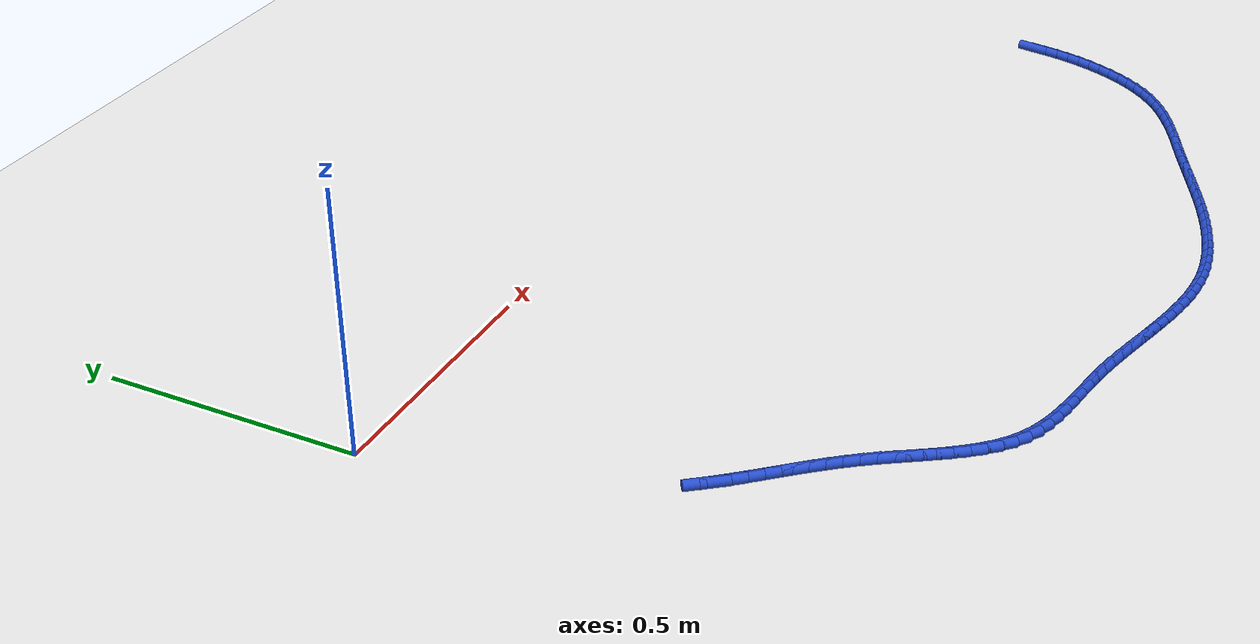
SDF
<sdf version="1.6">
 <world name="default">
  <model name="ground_plane">
   <static>1</static>
   <link name="link">
    <collision name="collision">
     <geometry><plane><normal>0 0 1</normal><size>100 100</size></plane></geometry>
     <surface><friction><ode><mu>100</mu><mu2>50</mu2></ode></friction></surface>
    </collision>
    <visual name="visual">
     <cast_shadows>0</cast_shadows>
     <geometry><plane><normal>0 0 1</normal><size>100 100</size></plane></geometry>
     <material>
      <script><uri>file://media/materials/scripts/gazebo.material</uri><name>Gazebo/WhiteGlow</name></script>
     </material>
    </visual>
   </link>
  </model>
  <model name="line">
   <link name="link_139">
    <pose>1.9559506436346756 -0.5431057378054991 0.01 0 1.57 1.4125639524216804</pose>
    <collision name="collision">
     <geometry><cylinder><radius>0.01</radius><length>0.08</length></cylinder></geometry>
    </collision>
    <visual name="visual">
     <material>
      <script><name>Gazebo/Blue</name><uri>file://media/materials/scripts/gazebo.material</uri></script>
     </material>
     <geometry><cylinder><radius>0.01</radius><length>0.08</length></cylinder></geometry>
    </visual>
   </link>
   <link name="link_140">
    <pose>1.9514938248098423 -0.5710365627338017 0.01 0 1.57 1.373774677985335</pose>
    <collision name="collision">
     <geometry><cylinder><radius>0.01</radius><length>0.08</length></cylinder></geometry>
    </collision>
    <visual name="visual">
     <material>
      <script><name>Gazebo/Blue</name><uri>file://media/materials/scripts/gazebo.material</uri></script>
     </material>
     <geometry><cylinder><radius>0.01</radius><length>0.08</length></cylinder></geometry>
    </visual>
   </link>
   <link name="link_141">
    <pose>1.9459382107487242 -0.59886874414688 0.01 0 1.57 1.3281870864576197</pose>
    <collision name="collision">
     <geometry><cylinder><radius>0.01</radius><length>0.08</length></cylinder></geometry>
    </collision>
    <visual name="visual">
     <material>
      <script><name>Gazebo/Blue</name><uri>file://media/materials/scripts/gazebo.material</uri></script>
     </material>
     <geometry><cylinder><radius>0.01</radius><length>0.08</length></cylinder></geometry>
    </visual>
   </link>
   <link name="link_142">
    <pose>1.9390818744615204 -0.6265729068750617 0.01 0 1.57 1.2779340515262887</pose>
    <collision name="collision">
     <geometry><cylinder><radius>0.01</radius><length>0.08</length></cylinder></geometry>
    </collision>
    <visual name="visual">
     <material>
      <script><name>Gazebo/Blue</name><uri>file://media/materials/scripts/gazebo.material</uri></script>
     </material>
     <geometry><cylinder><radius>0.01</radius><length>0.08</length></cylinder></geometry>
    </visual>
   </link>
   <link name="link_143">
    <pose>1.930792009245361 -0.6540653393045576 0.01 0 1.57 1.2258310094982932</pose>
    <collision name="collision">
     <geometry><cylinder><radius>0.01</radius><length>0.08</length></cylinder></geometry>
    </collision>
    <visual name="visual">
     <material>
      <script><name>Gazebo/Blue</name><uri>file://media/materials/scripts/gazebo.material</uri></script>
     </material>
     <geometry><cylinder><radius>0.01</radius><length>0.08</length></cylinder></geometry>
    </visual>
   </link>
   <link name="link_144">
    <pose>1.9210520615719568 -0.6811709415417458 0.01 0 1.57 1.1715428759661775</pose>
    <collision name="collision">
     <geometry><cylinder><radius>0.01</radius><length>0.08</length></cylinder></geometry>
    </collision>
    <visual name="visual">
     <material>
      <script><name>Gazebo/Blue</name><uri>file://media/materials/scripts/gazebo.material</uri></script>
     </material>
     <geometry><cylinder><radius>0.01</radius><length>0.08</length></cylinder></geometry>
    </visual>
   </link>
   <link name="link_145">
    <pose>1.909856625261561 -0.7077058506032109 0.01 0 1.57 1.1144315573899457</pose>
    <collision name="collision">
     <geometry><cylinder><radius>0.01</radius><length>0.08</length></cylinder></geometry>
    </collision>
    <visual name="visual">
     <material>
      <script><name>Gazebo/Blue</name><uri>file://media/materials/scripts/gazebo.material</uri></script>
     </material>
     <geometry><cylinder><radius>0.01</radius><length>0.08</length></cylinder></geometry>
    </visual>
   </link>
   <link name="link_146">
    <pose>1.8972002941344264 -0.7334862035055367 0.01 0 1.57 1.0538609094750415</pose>
    <collision name="collision">
     <geometry><cylinder><radius>0.01</radius><length>0.08</length></cylinder></geometry>
    </collision>
    <visual name="visual">
     <material>
      <script><name>Gazebo/Blue</name><uri>file://media/materials/scripts/gazebo.material</uri></script>
     </material>
     <geometry><cylinder><radius>0.01</radius><length>0.08</length></cylinder></geometry>
    </visual>
   </link>
   <link name="link_147">
    <pose>1.8830776620108047 -0.7583281372653077 0.01 0 1.57 0.9892059513643956</pose>
    <collision name="collision">
     <geometry><cylinder><radius>0.01</radius><length>0.08</length></cylinder></geometry>
    </collision>
    <visual name="visual">
     <material>
      <script><name>Gazebo/Blue</name><uri>file://media/materials/scripts/gazebo.material</uri></script>
     </material>
     <geometry><cylinder><radius>0.01</radius><length>0.08</length></cylinder></geometry>
    </visual>
   </link>
   <link name="link_148">
    <pose>1.8674833227109493 -0.7820477888991068 0.01 0 1.57 0.9198750159980641</pose>
    <collision name="collision">
     <geometry><cylinder><radius>0.01</radius><length>0.08</length></cylinder></geometry>
    </collision>
    <visual name="visual">
     <material>
      <script><name>Gazebo/Blue</name><uri>file://media/materials/scripts/gazebo.material</uri></script>
     </material>
     <geometry><cylinder><radius>0.01</radius><length>0.08</length></cylinder></geometry>
    </visual>
   </link>
   <link name="link_149">
    <pose>1.8504118700551124 -0.8044612954235184 0.01 0 1.57 0.845348479310693</pose>
    <collision name="collision">
     <geometry><cylinder><radius>0.01</radius><length>0.08</length></cylinder></geometry>
    </collision>
    <visual name="visual">
     <material>
      <script><name>Gazebo/Blue</name><uri>file://media/materials/scripts/gazebo.material</uri></script>
     </material>
     <geometry><cylinder><radius>0.01</radius><length>0.08</length></cylinder></geometry>
    </visual>
   </link>
   <link name="link_150">
    <pose>1.831857897863546 -0.8253847938551268 0.01 0 1.57 0.7653259132161297</pose>
    <collision name="collision">
     <geometry><cylinder><radius>0.01</radius><length>0.08</length></cylinder></geometry>
    </collision>
    <visual name="visual">
     <material>
      <script><name>Gazebo/Blue</name><uri>file://media/materials/scripts/gazebo.material</uri></script>
     </material>
     <geometry><cylinder><radius>0.01</radius><length>0.08</length></cylinder></geometry>
    </visual>
   </link>
   <link name="link_151">
    <pose>1.8118171298860966 -0.844636762260224 0.01 0 1.57 0.6853636844567281</pose>
    <collision name="collision">
     <geometry><cylinder><radius>0.01</radius><length>0.08</length></cylinder></geometry>
    </collision>
    <visual name="visual">
     <material>
      <script><name>Gazebo/Blue</name><uri>file://media/materials/scripts/gazebo.material</uri></script>
     </material>
     <geometry><cylinder><radius>0.01</radius><length>0.08</length></cylinder></geometry>
    </visual>
   </link>
   <link name="link_152">
    <pose>1.7903562027882622 -0.8621825999482347 0.01 0 1.57 0.6149918365311201</pose>
    <collision name="collision">
     <geometry><cylinder><radius>0.01</radius><length>0.08</length></cylinder></geometry>
    </collision>
    <visual name="visual">
     <material>
      <script><name>Gazebo/Blue</name><uri>file://media/materials/scripts/gazebo.material</uri></script>
     </material>
     <geometry><cylinder><radius>0.01</radius><length>0.08</length></cylinder></geometry>
    </visual>
   </link>
   <link name="link_153">
    <pose>1.7676534990929573 -0.8782192273856995 0.01 0 1.57 0.5554765264292743</pose>
    <collision name="collision">
     <geometry><cylinder><radius>0.01</radius><length>0.08</length></cylinder></geometry>
    </collision>
    <visual name="visual">
     <material>
      <script><name>Gazebo/Blue</name><uri>file://media/materials/scripts/gazebo.material</uri></script>
     </material>
     <geometry><cylinder><radius>0.01</radius><length>0.08</length></cylinder></geometry>
    </visual>
   </link>
   <link name="link_154">
    <pose>1.743897231083949 -0.8929639308733786 0.01 0 1.57 0.5068311858692481</pose>
    <collision name="collision">
     <geometry><cylinder><radius>0.01</radius><length>0.08</length></cylinder></geometry>
    </collision>
    <visual name="visual">
     <material>
      <script><name>Gazebo/Blue</name><uri>file://media/materials/scripts/gazebo.material</uri></script>
     </material>
     <geometry><cylinder><radius>0.01</radius><length>0.08</length></cylinder></geometry>
    </visual>
   </link>
   <link name="link_155">
    <pose>1.7192756110450027 -0.9066339967120328 0.01 0 1.57 0.46879924281256974</pose>
    <collision name="collision">
     <geometry><cylinder><radius>0.01</radius><length>0.08</length></cylinder></geometry>
    </collision>
    <visual name="visual">
     <material>
      <script><name>Gazebo/Blue</name><uri>file://media/materials/scripts/gazebo.material</uri></script>
     </material>
     <geometry><cylinder><radius>0.01</radius><length>0.08</length></cylinder></geometry>
    </visual>
   </link>
   <link name="link_156">
    <pose>1.6939768512598887 -0.9194467112024219 0.01 0 1.57 0.44102506789707036</pose>
    <collision name="collision">
     <geometry><cylinder><radius>0.01</radius><length>0.08</length></cylinder></geometry>
    </collision>
    <visual name="visual">
     <material>
      <script><name>Gazebo/Blue</name><uri>file://media/materials/scripts/gazebo.material</uri></script>
     </material>
     <geometry><cylinder><radius>0.01</radius><length>0.08</length></cylinder></geometry>
    </visual>
   </link>
   <link name="link_157">
    <pose>1.6681891640123723 -0.9316193606453067 0.01 0 1.57 0.42317549848484876</pose>
    <collision name="collision">
     <geometry><cylinder><radius>0.01</radius><length>0.08</length></cylinder></geometry>
    </collision>
    <visual name="visual">
     <material>
      <script><name>Gazebo/Blue</name><uri>file://media/materials/scripts/gazebo.material</uri></script>
     </material>
     <geometry><cylinder><radius>0.01</radius><length>0.08</length></cylinder></geometry>
    </visual>
   </link>
   <link name="link_158">
    <pose>1.6421007615862209 -0.9433692313414478 0.01 0 1.57 0.41501773414216553</pose>
    <collision name="collision">
     <geometry><cylinder><radius>0.01</radius><length>0.08</length></cylinder></geometry>
    </collision>
    <visual name="visual">
     <material>
      <script><name>Gazebo/Blue</name><uri>file://media/materials/scripts/gazebo.material</uri></script>
     </material>
     <geometry><cylinder><radius>0.01</radius><length>0.08</length></cylinder></geometry>
    </visual>
   </link>
   <link name="link_159">
    <pose>1.615899856265202 -0.9549136095916052 0.01 0 1.57 0.4164641312949849</pose>
    <collision name="collision">
     <geometry><cylinder><radius>0.01</radius><length>0.08</length></cylinder></geometry>
    </collision>
    <visual name="visual">
     <material>
      <script><name>Gazebo/Blue</name><uri>file://media/materials/scripts/gazebo.material</uri></script>
     </material>
     <geometry><cylinder><radius>0.01</radius><length>0.08</length></cylinder></geometry>
    </visual>
   </link>
   <link name="link_160">
    <pose>1.5897746603284557 -0.9664697816907993 0.01 0 1.57 0.42527121408741</pose>
    <collision name="collision">
     <geometry><cylinder><radius>0.01</radius><length>0.08</length></cylinder></geometry>
    </collision>
    <visual name="visual">
     <material>
      <script><name>Gazebo/Blue</name><uri>file://media/materials/scripts/gazebo.material</uri></script>
     </material>
     <geometry><cylinder><radius>0.01</radius><length>0.08</length></cylinder></geometry>
    </visual>
   </link>
   <link name="link_161">
    <pose>1.5638706220382113 -0.9782019786322178 0.01 0 1.57 0.43237338520078883</pose>
    <collision name="collision">
     <geometry><cylinder><radius>0.01</radius><length>0.08</length></cylinder></geometry>
    </collision>
    <visual name="visual">
     <material>
      <script><name>Gazebo/Blue</name><uri>file://media/materials/scripts/gazebo.material</uri></script>
     </material>
     <geometry><cylinder><radius>0.01</radius><length>0.08</length></cylinder></geometry>
    </visual>
   </link>
   <link name="link_162">
    <pose>1.5381645729728057 -0.990065236630259 0.01 0 1.57 0.4354653270289345</pose>
    <collision name="collision">
     <geometry><cylinder><radius>0.01</radius><length>0.08</length></cylinder></geometry>
    </collision>
    <visual name="visual">
     <material>
      <script><name>Gazebo/Blue</name><uri>file://media/materials/scripts/gazebo.material</uri></script>
     </material>
     <geometry><cylinder><radius>0.01</radius><length>0.08</length></cylinder></geometry>
    </visual>
   </link>
   <link name="link_163">
    <pose>1.5125917917135079 -1.0019630390527705 0.01 0 1.57 0.4344953187759427</pose>
    <collision name="collision">
     <geometry><cylinder><radius>0.01</radius><length>0.08</length></cylinder></geometry>
    </collision>
    <visual name="visual">
     <material>
      <script><name>Gazebo/Blue</name><uri>file://media/materials/scripts/gazebo.material</uri></script>
     </material>
     <geometry><cylinder><radius>0.01</radius><length>0.08</length></cylinder></geometry>
    </visual>
   </link>
   <link name="link_164">
    <pose>1.4870875568415822 -1.0137988692676 0.01 0 1.57 0.4294269257647403</pose>
    <collision name="collision">
     <geometry><cylinder><radius>0.01</radius><length>0.08</length></cylinder></geometry>
    </collision>
    <visual name="visual">
     <material>
      <script><name>Gazebo/Blue</name><uri>file://media/materials/scripts/gazebo.material</uri></script>
     </material>
     <geometry><cylinder><radius>0.01</radius><length>0.08</length></cylinder></geometry>
    </visual>
   </link>
   <link name="link_165">
    <pose>1.461587146938295 -1.025476210642595 0.01 0 1.57 0.42023997744326946</pose>
    <collision name="collision">
     <geometry><cylinder><radius>0.01</radius><length>0.08</length></cylinder></geometry>
    </collision>
    <visual name="visual">
     <material>
      <script><name>Gazebo/Blue</name><uri>file://media/materials/scripts/gazebo.material</uri></script>
     </material>
     <geometry><cylinder><radius>0.01</radius><length>0.08</length></cylinder></geometry>
    </visual>
   </link>
   <link name="link_166">
    <pose>1.4360258405849122 -1.0368985465456035 0.01 0 1.57 0.4069334793713736</pose>
    <collision name="collision">
     <geometry><cylinder><radius>0.01</radius><length>0.08</length></cylinder></geometry>
    </collision>
    <visual name="visual">
     <material>
      <script><name>Gazebo/Blue</name><uri>file://media/materials/scripts/gazebo.material</uri></script>
     </material>
     <geometry><cylinder><radius>0.01</radius><length>0.08</length></cylinder></geometry>
    </visual>
   </link>
   <link name="link_167">
    <pose>1.4103389163627005 -1.0479693603444735 0.01 0 1.57 0.3895304396511434</pose>
    <collision name="collision">
     <geometry><cylinder><radius>0.01</radius><length>0.08</length></cylinder></geometry>
    </collision>
    <visual name="visual">
     <material>
      <script><name>Gazebo/Blue</name><uri>file://media/materials/scripts/gazebo.material</uri></script>
     </material>
     <geometry><cylinder><radius>0.01</radius><length>0.08</length></cylinder></geometry>
    </visual>
   </link>
   <link name="link_168">
    <pose>1.3844616528529263 -1.0585921354070524 0.01 0 1.57 0.36808443249380635</pose>
    <collision name="collision">
     <geometry><cylinder><radius>0.01</radius><length>0.08</length></cylinder></geometry>
    </collision>
    <visual name="visual">
     <material>
      <script><name>Gazebo/Blue</name><uri>file://media/materials/scripts/gazebo.material</uri></script>
     </material>
     <geometry><cylinder><radius>0.01</radius><length>0.08</length></cylinder></geometry>
    </visual>
   </link>
   <link name="link_169">
    <pose>1.358329328636854 -1.0686703551011871 0.01 0 1.57 0.34268751199488484</pose>
    <collision name="collision">
     <geometry><cylinder><radius>0.01</radius><length>0.08</length></cylinder></geometry>
    </collision>
    <visual name="visual">
     <material>
      <script><name>Gazebo/Blue</name><uri>file://media/materials/scripts/gazebo.material</uri></script>
     </material>
     <geometry><cylinder><radius>0.01</radius><length>0.08</length></cylinder></geometry>
    </visual>
   </link>
   <link name="link_170">
    <pose>1.331877222295751 -1.0781075027947271 0.01 0 1.57 0.31347904345910593</pose>
    <collision name="collision">
     <geometry><cylinder><radius>0.01</radius><length>0.08</length></cylinder></geometry>
    </collision>
    <visual name="visual">
     <material>
      <script><name>Gazebo/Blue</name><uri>file://media/materials/scripts/gazebo.material</uri></script>
     </material>
     <geometry><cylinder><radius>0.01</radius><length>0.08</length></cylinder></geometry>
    </visual>
   </link>
   <link name="link_171">
    <pose>1.305040731482103 -1.0868070297183439 0.01 0 1.57 0.28068031925091164</pose>
    <collision name="collision">
     <geometry><cylinder><radius>0.01</radius><length>0.08</length></cylinder></geometry>
    </collision>
    <visual name="visual">
     <material>
      <script><name>Gazebo/Blue</name><uri>file://media/materials/scripts/gazebo.material</uri></script>
     </material>
     <geometry><cylinder><radius>0.01</radius><length>0.08</length></cylinder></geometry>
    </visual>
   </link>
   <link name="link_172">
    <pose>1.2777988278232593 -1.0946606265407557 0.01 0 1.57 0.24429952003980096</pose>
    <collision name="collision">
     <geometry><cylinder><radius>0.01</radius><length>0.08</length></cylinder></geometry>
    </collision>
    <visual name="visual">
     <material>
      <script><name>Gazebo/Blue</name><uri>file://media/materials/scripts/gazebo.material</uri></script>
     </material>
     <geometry><cylinder><radius>0.01</radius><length>0.08</length></cylinder></geometry>
    </visual>
   </link>
   <link name="link_173">
    <pose>1.2502387733223066 -1.1015307564921275 0.01 0 1.57 0.2039570069829803</pose>
    <collision name="collision">
     <geometry><cylinder><radius>0.01</radius><length>0.08</length></cylinder></geometry>
    </collision>
    <visual name="visual">
     <material>
      <script><name>Gazebo/Blue</name><uri>file://media/materials/scripts/gazebo.material</uri></script>
     </material>
     <geometry><cylinder><radius>0.01</radius><length>0.08</length></cylinder></geometry>
    </visual>
   </link>
   <link name="link_174">
    <pose>1.2224643676768507 -1.1072754192993146 0.01 0 1.57 0.15920077057156953</pose>
    <collision name="collision">
     <geometry><cylinder><radius>0.01</radius><length>0.08</length></cylinder></geometry>
    </collision>
    <visual name="visual">
     <material>
      <script><name>Gazebo/Blue</name><uri>file://media/materials/scripts/gazebo.material</uri></script>
     </material>
     <geometry><cylinder><radius>0.01</radius><length>0.08</length></cylinder></geometry>
    </visual>
   </link>
   <link name="link_175">
    <pose>1.194579410584498 -1.111752614689173 0.01 0 1.57 0.10954676432510882</pose>
    <collision name="collision">
     <geometry><cylinder><radius>0.01</radius><length>0.08</length></cylinder></geometry>
    </collision>
    <visual name="visual">
     <material>
      <script><name>Gazebo/Blue</name><uri>file://media/materials/scripts/gazebo.material</uri></script>
     </material>
     <geometry><cylinder><radius>0.01</radius><length>0.08</length></cylinder></geometry>
    </visual>
   </link>
   <link name="link_176">
    <pose>1.1666877017428554 -1.1148203423885577 0.01 0 1.57 0.05449817579247812</pose>
    <collision name="collision">
     <geometry><cylinder><radius>0.01</radius><length>0.08</length></cylinder></geometry>
    </collision>
    <visual name="visual">
     <material>
      <script><name>Gazebo/Blue</name><uri>file://media/materials/scripts/gazebo.material</uri></script>
     </material>
     <geometry><cylinder><radius>0.01</radius><length>0.08</length></cylinder></geometry>
    </visual>
   </link>
   <link name="link_177">
    <pose>1.138893040849528 -1.1163366021243242 0.01 0 1.57 -0.005367091232098269</pose>
    <collision name="collision">
     <geometry><cylinder><radius>0.01</radius><length>0.08</length></cylinder></geometry>
    </collision>
    <visual name="visual">
     <material>
      <script><name>Gazebo/Blue</name><uri>file://media/materials/scripts/gazebo.material</uri></script>
     </material>
     <geometry><cylinder><radius>0.01</radius><length>0.08</length></cylinder></geometry>
    </visual>
   </link>
   <link name="link_178">
    <pose>1.1112861236052891 -1.1161884318581201 0.01 0 1.57 -0.06269636779164692</pose>
    <collision name="collision">
     <geometry><cylinder><radius>0.01</radius><length>0.08</length></cylinder></geometry>
    </collision>
    <visual name="visual">
     <material>
      <script><name>Gazebo/Blue</name><uri>file://media/materials/scripts/gazebo.material</uri></script>
     </material>
     <geometry><cylinder><radius>0.01</radius><length>0.08</length></cylinder></geometry>
    </visual>
   </link>
   <link name="link_179">
    <pose>1.083865526625013 -1.1144670038839677 0.01 0 1.57 -0.11374849117271707</pose>
    <collision name="collision">
     <geometry><cylinder><radius>0.01</radius><length>0.08</length></cylinder></geometry>
    </collision>
    <visual name="visual">
     <material>
      <script><name>Gazebo/Blue</name><uri>file://media/materials/scripts/gazebo.material</uri></script>
     </material>
     <geometry><cylinder><radius>0.01</radius><length>0.08</length></cylinder></geometry>
    </visual>
   </link>
   <link name="link_180">
    <pose>1.0565903184834646 -1.1113510396428674 0.01 0 1.57 -0.1580846179042192</pose>
    <collision name="collision">
     <geometry><cylinder><radius>0.01</radius><length>0.08</length></cylinder></geometry>
    </collision>
    <visual name="visual">
     <material>
      <script><name>Gazebo/Blue</name><uri>file://media/materials/scripts/gazebo.material</uri></script>
     </material>
     <geometry><cylinder><radius>0.01</radius><length>0.08</length></cylinder></geometry>
    </visual>
   </link>
   <link name="link_181">
    <pose>1.0294194165142934 -1.1070195957235693 0.01 0 1.57 -0.19549115122889021</pose>
    <collision name="collision">
     <geometry><cylinder><radius>0.01</radius><length>0.08</length></cylinder></geometry>
    </collision>
    <visual name="visual">
     <material>
      <script><name>Gazebo/Blue</name><uri>file://media/materials/scripts/gazebo.material</uri></script>
     </material>
     <geometry><cylinder><radius>0.01</radius><length>0.08</length></cylinder></geometry>
    </visual>
   </link>
   <link name="link_182">
    <pose>1.0023117380511484 -1.1016517287148235 0.01 0 1.57 -0.22591268820873298</pose>
    <collision name="collision">
     <geometry><cylinder><radius>0.01</radius><length>0.08</length></cylinder></geometry>
    </collision>
    <visual name="visual">
     <material>
      <script><name>Gazebo/Blue</name><uri>file://media/materials/scripts/gazebo.material</uri></script>
     </material>
     <geometry><cylinder><radius>0.01</radius><length>0.08</length></cylinder></geometry>
    </visual>
   </link>
   <link name="link_183">
    <pose>0.9752262004276795 -1.0954264952053798 0.01 0 1.57 -0.24939840348750325</pose>
    <collision name="collision">
     <geometry><cylinder><radius>0.01</radius><length>0.08</length></cylinder></geometry>
    </collision>
    <visual name="visual">
     <material>
      <script><name>Gazebo/Blue</name><uri>file://media/materials/scripts/gazebo.material</uri></script>
     </material>
     <geometry><cylinder><radius>0.01</radius><length>0.08</length></cylinder></geometry>
    </visual>
   </link>
   <link name="link_184">
    <pose>0.948121720977536 -1.0885229517839885 0.01 0 1.57 -0.26605658456264764</pose>
    <collision name="collision">
     <geometry><cylinder><radius>0.01</radius><length>0.08</length></cylinder></geometry>
    </collision>
    <visual name="visual">
     <material>
      <script><name>Gazebo/Blue</name><uri>file://media/materials/scripts/gazebo.material</uri></script>
     </material>
     <geometry><cylinder><radius>0.01</radius><length>0.08</length></cylinder></geometry>
    </visual>
   </link>
   <link name="link_185">
    <pose>0.9209572170343663 -1.0811201550393987 0.01 0 1.57 -0.2760201871842577</pose>
    <collision name="collision">
     <geometry><cylinder><radius>0.01</radius><length>0.08</length></cylinder></geometry>
    </collision>
    <visual name="visual">
     <material>
      <script><name>Gazebo/Blue</name><uri>file://media/materials/scripts/gazebo.material</uri></script>
     </material>
     <geometry><cylinder><radius>0.01</radius><length>0.08</length></cylinder></geometry>
    </visual>
   </link>
   <link name="link_186">
    <pose>0.8936916059318216 -1.073397161560361 0.01 0 1.57 -0.27942370847086095</pose>
    <collision name="collision">
     <geometry><cylinder><radius>0.01</radius><length>0.08</length></cylinder></geometry>
    </collision>
    <visual name="visual">
     <material>
      <script><name>Gazebo/Blue</name><uri>file://media/materials/scripts/gazebo.material</uri></script>
     </material>
     <geometry><cylinder><radius>0.01</radius><length>0.08</length></cylinder></geometry>
    </visual>
   </link>
   <link name="link_187">
    <pose>0.86628380500355 -1.0655330279356254 0.01 0 1.57 -0.27639043833717913</pose>
    <collision name="collision">
     <geometry><cylinder><radius>0.01</radius><length>0.08</length></cylinder></geometry>
    </collision>
    <visual name="visual">
     <material>
      <script><name>Gazebo/Blue</name><uri>file://media/materials/scripts/gazebo.material</uri></script>
     </material>
     <geometry><cylinder><radius>0.01</radius><length>0.08</length></cylinder></geometry>
    </visual>
   </link>
   <link name="link_188">
    <pose>0.8386927315832016 -1.0577068107539416 0.01 0 1.57 -0.2670288187501966</pose>
    <collision name="collision">
     <geometry><cylinder><radius>0.01</radius><length>0.08</length></cylinder></geometry>
    </collision>
    <visual name="visual">
     <material>
      <script><name>Gazebo/Blue</name><uri>file://media/materials/scripts/gazebo.material</uri></script>
     </material>
     <geometry><cylinder><radius>0.01</radius><length>0.08</length></cylinder></geometry>
    </visual>
   </link>
   <link name="link_189">
    <pose>0.8108773030044254 -1.0500975666040597 0.01 0 1.57 -0.25143677272363635</pose>
    <collision name="collision">
     <geometry><cylinder><radius>0.01</radius><length>0.08</length></cylinder></geometry>
    </collision>
    <visual name="visual">
     <material>
      <script><name>Gazebo/Blue</name><uri>file://media/materials/scripts/gazebo.material</uri></script>
     </material>
     <geometry><cylinder><radius>0.01</radius><length>0.08</length></cylinder></geometry>
    </visual>
   </link>
   <link name="link_190">
    <pose>0.7827964366008707 -1.0428843520747302 0.01 0 1.57 -0.22971311225019803</pose>
    <collision name="collision">
     <geometry><cylinder><radius>0.01</radius><length>0.08</length></cylinder></geometry>
    </collision>
    <visual name="visual">
     <material>
      <script><name>Gazebo/Blue</name><uri>file://media/materials/scripts/gazebo.material</uri></script>
     </material>
     <geometry><cylinder><radius>0.01</radius><length>0.08</length></cylinder></geometry>
    </visual>
   </link>
   <link name="link_191">
    <pose>0.7544090497061873 -1.0362462237547017 0.01 0 1.57 -0.20272864169798763</pose>
    <collision name="collision">
     <geometry><cylinder><radius>0.01</radius><length>0.08</length></cylinder></geometry>
    </collision>
    <visual name="visual">
     <material>
      <script><name>Gazebo/Blue</name><uri>file://media/materials/scripts/gazebo.material</uri></script>
     </material>
     <geometry><cylinder><radius>0.01</radius><length>0.08</length></cylinder></geometry>
    </visual>
   </link>
   <link name="link_192">
    <pose>0.7256842340927615 -1.0303417695396868 0.01 0 1.57 -0.18204219892940637</pose>
    <collision name="collision">
     <geometry><cylinder><radius>0.01</radius><length>0.08</length></cylinder></geometry>
    </collision>
    <visual name="visual">
     <material>
      <script><name>Gazebo/Blue</name><uri>file://media/materials/scripts/gazebo.material</uri></script>
     </material>
     <geometry><cylinder><radius>0.01</radius><length>0.08</length></cylinder></geometry>
    </visual>
   </link>
   <link name="link_193">
    <pose>0.6967474120448575 -1.0250150753324705 0.01 0 1.57 -0.1763852744447256</pose>
    <collision name="collision">
     <geometry><cylinder><radius>0.01</radius><length>0.08</length></cylinder></geometry>
    </collision>
    <visual name="visual">
     <material>
      <script><name>Gazebo/Blue</name><uri>file://media/materials/scripts/gazebo.material</uri></script>
     </material>
     <geometry><cylinder><radius>0.01</radius><length>0.08</length></cylinder></geometry>
    </visual>
   </link>
   <link name="link_194">
    <pose>0.6678464765230461 -1.0198638434520273 0.01 0 1.57 -0.18600805787417443</pose>
    <collision name="collision">
     <geometry><cylinder><radius>0.01</radius><length>0.08</length></cylinder></geometry>
    </collision>
    <visual name="visual">
     <material>
      <script><name>Gazebo/Blue</name><uri>file://media/materials/scripts/gazebo.material</uri></script>
     </material>
     <geometry><cylinder><radius>0.01</radius><length>0.08</length></cylinder></geometry>
    </visual>
   </link>
   <link name="link_195">
    <pose>0.6392325962169905 -1.0144791861837241 0.01 0 1.57 -0.21145967059110607</pose>
    <collision name="collision">
     <geometry><cylinder><radius>0.01</radius><length>0.08</length></cylinder></geometry>
    </collision>
    <visual name="visual">
     <material>
      <script><name>Gazebo/Blue</name><uri>file://media/materials/scripts/gazebo.material</uri></script>
     </material>
     <geometry><cylinder><radius>0.01</radius><length>0.08</length></cylinder></geometry>
    </visual>
   </link>
   <link name="link_196">
    <pose>0.611156939816353 -1.0084522158129259 0.01 0 1.57 -0.2538098950068013</pose>
    <collision name="collision">
     <geometry><cylinder><radius>0.01</radius><length>0.08</length></cylinder></geometry>
    </collision>
    <visual name="visual">
     <material>
      <script><name>Gazebo/Blue</name><uri>file://media/materials/scripts/gazebo.material</uri></script>
     </material>
     <geometry><cylinder><radius>0.01</radius><length>0.08</length></cylinder></geometry>
    </visual>
   </link>
   <link name="link_197">
    <pose>0.5838706760107972 -1.0013740446249997 0.01 0 1.57 -0.31452156881869714</pose>
    <collision name="collision">
     <geometry><cylinder><radius>0.01</radius><length>0.08</length></cylinder></geometry>
    </collision>
    <visual name="visual">
     <material>
      <script><name>Gazebo/Blue</name><uri>file://media/materials/scripts/gazebo.material</uri></script>
     </material>
     <geometry><cylinder><radius>0.01</radius><length>0.08</length></cylinder></geometry>
    </visual>
   </link>
   <link name="link_198">
    <pose>0.5576249734899856 -0.9928357849053104 0.01 0 1.57 -0.395123905563364</pose>
    <collision name="collision">
     <geometry><cylinder><radius>0.01</radius><length>0.08</length></cylinder></geometry>
    </collision>
    <visual name="visual">
     <material>
      <script><name>Gazebo/Blue</name><uri>file://media/materials/scripts/gazebo.material</uri></script>
     </material>
     <geometry><cylinder><radius>0.01</radius><length>0.08</length></cylinder></geometry>
    </visual>
   </link>
   <link name="link_199">
    <pose>0.5326710009435811 -0.9824285489392243 0.01 0 1.57 -0.49655819859273626</pose>
    <collision name="collision">
     <geometry><cylinder><radius>0.01</radius><length>0.08</length></cylinder></geometry>
    </collision>
    <visual name="visual">
     <material>
      <script><name>Gazebo/Blue</name><uri>file://media/materials/scripts/gazebo.material</uri></script>
     </material>
     <geometry><cylinder><radius>0.01</radius><length>0.08</length></cylinder></geometry>
    </visual>
   </link>
   <link name="link_200">
    <pose>0.5092599270612459 -0.9697434490121072 0.01 0 1.57 -0.6154443832067721</pose>
    <collision name="collision">
     <geometry><cylinder><radius>0.01</radius><length>0.08</length></cylinder></geometry>
    </collision>
    <visual name="visual">
     <material>
      <script><name>Gazebo/Blue</name><uri>file://media/materials/scripts/gazebo.material</uri></script>
     </material>
     <geometry><cylinder><radius>0.01</radius><length>0.08</length></cylinder></geometry>
    </visual>
   </link>
   <link name="link_201">
    <pose>0.48760360399038083 -0.954431263613948 0.01 0 1.57 -0.7269386722286124</pose>
    <collision name="collision">
     <geometry><cylinder><radius>0.01</radius><length>0.08</length></cylinder></geometry>
    </collision>
    <visual name="visual">
     <material>
      <script><name>Gazebo/Blue</name><uri>file://media/materials/scripts/gazebo.material</uri></script>
     </material>
     <geometry><cylinder><radius>0.01</radius><length>0.08</length></cylinder></geometry>
    </visual>
   </link>
   <link name="link_202">
    <pose>0.46759146183597283 -0.9366320741705969 0.01 0 1.57 -0.8183322806814659</pose>
    <collision name="collision">
     <geometry><cylinder><radius>0.01</radius><length>0.08</length></cylinder></geometry>
    </collision>
    <visual name="visual">
     <material>
      <script><name>Gazebo/Blue</name><uri>file://media/materials/scripts/gazebo.material</uri></script>
     </material>
     <geometry><cylinder><radius>0.01</radius><length>0.08</length></cylinder></geometry>
    </visual>
   </link>
   <link name="link_203">
    <pose>0.4489549434649008 -0.9167257212101583 0.01 0 1.57 -0.8897477339103174</pose>
    <collision name="collision">
     <geometry><cylinder><radius>0.01</radius><length>0.08</length></cylinder></geometry>
    </collision>
    <visual name="visual">
     <material>
      <script><name>Gazebo/Blue</name><uri>file://media/materials/scripts/gazebo.material</uri></script>
     </material>
     <geometry><cylinder><radius>0.01</radius><length>0.08</length></cylinder></geometry>
    </visual>
   </link>
   <link name="link_204">
    <pose>0.4314244075359489 -0.8950936906389463 0.01 0 1.57 -0.9424495321719503</pose>
    <collision name="collision">
     <geometry><cylinder><radius>0.01</radius><length>0.08</length></cylinder></geometry>
    </collision>
    <visual name="visual">
     <material>
      <script><name>Gazebo/Blue</name><uri>file://media/materials/scripts/gazebo.material</uri></script>
     </material>
     <geometry><cylinder><radius>0.01</radius><length>0.08</length></cylinder></geometry>
    </visual>
   </link>
   <link name="link_205">
    <pose>0.4147302127079026 -0.8721174683632775 0.01 0 1.57 -0.9779449051526266</pose>
    <collision name="collision">
     <geometry><cylinder><radius>0.01</radius><length>0.08</length></cylinder></geometry>
    </collision>
    <visual name="visual">
     <material>
      <script><name>Gazebo/Blue</name><uri>file://media/materials/scripts/gazebo.material</uri></script>
     </material>
     <geometry><cylinder><radius>0.01</radius><length>0.08</length></cylinder></geometry>
    </visual>
   </link>
   <link name="link_206">
    <pose>0.39860271763954624 -0.8481785402894659 0.01 0 1.57 -0.9975138782658923</pose>
    <collision name="collision">
     <geometry><cylinder><radius>0.01</radius><length>0.08</length></cylinder></geometry>
    </collision>
    <visual name="visual">
     <material>
      <script><name>Gazebo/Blue</name><uri>file://media/materials/scripts/gazebo.material</uri></script>
     </material>
     <geometry><cylinder><radius>0.01</radius><length>0.08</length></cylinder></geometry>
    </visual>
   </link>
   <link name="link_207">
    <pose>0.3827722809896648 -0.8236583923238272 0.01 0 1.57 -1.001991402585346</pose>
    <collision name="collision">
     <geometry><cylinder><radius>0.01</radius><length>0.08</length></cylinder></geometry>
    </collision>
    <visual name="visual">
     <material>
      <script><name>Gazebo/Blue</name><uri>file://media/materials/scripts/gazebo.material</uri></script>
     </material>
     <geometry><cylinder><radius>0.01</radius><length>0.08</length></cylinder></geometry>
    </visual>
   </link>
   <link name="link_208">
    <pose>0.36696926141704284 -0.7989385103726762 0.01 0 1.57 -0.9916911719920911</pose>
    <collision name="collision">
     <geometry><cylinder><radius>0.01</radius><length>0.08</length></cylinder></geometry>
    </collision>
    <visual name="visual">
     <material>
      <script><name>Gazebo/Blue</name><uri>file://media/materials/scripts/gazebo.material</uri></script>
     </material>
     <geometry><cylinder><radius>0.01</radius><length>0.08</length></cylinder></geometry>
    </visual>
   </link>
   <link name="link_209">
    <pose>0.3509240175804656 -0.7744003803423288 0.01 0 1.57 -0.9664491953059755</pose>
    <collision name="collision">
     <geometry><cylinder><radius>0.01</radius><length>0.08</length></cylinder></geometry>
    </collision>
    <visual name="visual">
     <material>
      <script><name>Gazebo/Blue</name><uri>file://media/materials/scripts/gazebo.material</uri></script>
     </material>
     <geometry><cylinder><radius>0.01</radius><length>0.08</length></cylinder></geometry>
    </visual>
   </link>
   <link name="link_210">
    <pose>0.334367738183799 -0.7504244550385052 0.01 0 1.57 -0.9323618852976439</pose>
    <collision name="collision">
     <geometry><cylinder><radius>0.01</radius><length>0.08</length></cylinder></geometry>
    </collision>
    <visual name="visual">
     <material>
      <script><name>Gazebo/Blue</name><uri>file://media/materials/scripts/gazebo.material</uri></script>
     </material>
     <geometry><cylinder><radius>0.01</radius><length>0.08</length></cylinder></geometry>
    </visual>
   </link>
   <link name="link_211">
    <pose>0.3171578471701194 -0.7272340708600855 0.01 0 1.57 -0.9031089462753981</pose>
    <collision name="collision">
     <geometry><cylinder><radius>0.01</radius><length>0.08</length></cylinder></geometry>
    </collision>
    <visual name="visual">
     <material>
      <script><name>Gazebo/Blue</name><uri>file://media/materials/scripts/gazebo.material</uri></script>
     </material>
     <geometry><cylinder><radius>0.01</radius><length>0.08</length></cylinder></geometry>
    </visual>
   </link>
   <link name="link_212">
    <pose>0.2994122070409577 -0.7047284140656025 0.01 0 1.57 -0.8806472775602779</pose>
    <collision name="collision">
     <geometry><cylinder><radius>0.01</radius><length>0.08</length></cylinder></geometry>
    </collision>
    <visual name="visual">
     <material>
      <script><name>Gazebo/Blue</name><uri>file://media/materials/scripts/gazebo.material</uri></script>
     </material>
     <geometry><cylinder><radius>0.01</radius><length>0.08</length></cylinder></geometry>
    </visual>
   </link>
   <link name="link_213">
    <pose>0.28128085054492136 -0.6827666307975352 0.01 0 1.57 -0.8651698926213434</pose>
    <collision name="collision">
     <geometry><cylinder><radius>0.01</radius><length>0.08</length></cylinder></geometry>
    </collision>
    <visual name="visual">
     <material>
      <script><name>Gazebo/Blue</name><uri>file://media/materials/scripts/gazebo.material</uri></script>
     </material>
     <geometry><cylinder><radius>0.01</radius><length>0.08</length></cylinder></geometry>
    </visual>
   </link>
   <link name="link_214">
    <pose>0.2629138104306187 -0.661207867198364 0.01 0 1.57 -0.8568225645526485</pose>
    <collision name="collision">
     <geometry><cylinder><radius>0.01</radius><length>0.08</length></cylinder></geometry>
    </collision>
    <visual name="visual">
     <material>
      <script><name>Gazebo/Blue</name><uri>file://media/materials/scripts/gazebo.material</uri></script>
     </material>
     <geometry><cylinder><radius>0.01</radius><length>0.08</length></cylinder></geometry>
    </visual>
   </link>
   <link name="link_215">
    <pose>0.24446111944665658 -0.6399112694105668 0.01 0 1.57 -0.8557249513109286</pose>
    <collision name="collision">
     <geometry><cylinder><radius>0.01</radius><length>0.08</length></cylinder></geometry>
    </collision>
    <visual name="visual">
     <material>
      <script><name>Gazebo/Blue</name><uri>file://media/materials/scripts/gazebo.material</uri></script>
     </material>
     <geometry><cylinder><radius>0.01</radius><length>0.08</length></cylinder></geometry>
    </visual>
   </link>
   <link name="link_216">
    <pose>0.22607281034164417 -0.6187359835766248 0.01 0 1.57 -0.8619824339507669</pose>
    <collision name="collision">
     <geometry><cylinder><radius>0.01</radius><length>0.08</length></cylinder></geometry>
    </collision>
    <visual name="visual">
     <material>
      <script><name>Gazebo/Blue</name><uri>file://media/materials/scripts/gazebo.material</uri></script>
     </material>
     <geometry><cylinder><radius>0.01</radius><length>0.08</length></cylinder></geometry>
    </visual>
   </link>
   <link name="link_217">
    <pose>0.2078989158641887 -0.5975411558390169 0.01 0 1.57 -0.8756870880871725</pose>
    <collision name="collision">
     <geometry><cylinder><radius>0.01</radius><length>0.08</length></cylinder></geometry>
    </collision>
    <visual name="visual">
     <material>
      <script><name>Gazebo/Blue</name><uri>file://media/materials/scripts/gazebo.material</uri></script>
     </material>
     <geometry><cylinder><radius>0.01</radius><length>0.08</length></cylinder></geometry>
    </visual>
   </link>
   <link name="link_218">
    <pose>0.19008946876289806 -0.5761859323402229 0.01 0 1.57 -0.8969065941383375</pose>
    <collision name="collision">
     <geometry><cylinder><radius>0.01</radius><length>0.08</length></cylinder></geometry>
    </collision>
    <visual name="visual">
     <material>
      <script><name>Gazebo/Blue</name><uri>file://media/materials/scripts/gazebo.material</uri></script>
     </material>
     <geometry><cylinder><radius>0.01</radius><length>0.08</length></cylinder></geometry>
    </visual>
   </link>
   <link name="link_219">
    <pose>0.1727945017863801 -0.5545294592227221 0.01 0 1.57 -0.9256602949320398</pose>
    <collision name="collision">
     <geometry><cylinder><radius>0.01</radius><length>0.08</length></cylinder></geometry>
    </collision>
    <visual name="visual">
     <material>
      <script><name>Gazebo/Blue</name><uri>file://media/materials/scripts/gazebo.material</uri></script>
     </material>
     <geometry><cylinder><radius>0.01</radius><length>0.08</length></cylinder></geometry>
    </visual>
   </link>
  </model>
 </world>
</sdf>
